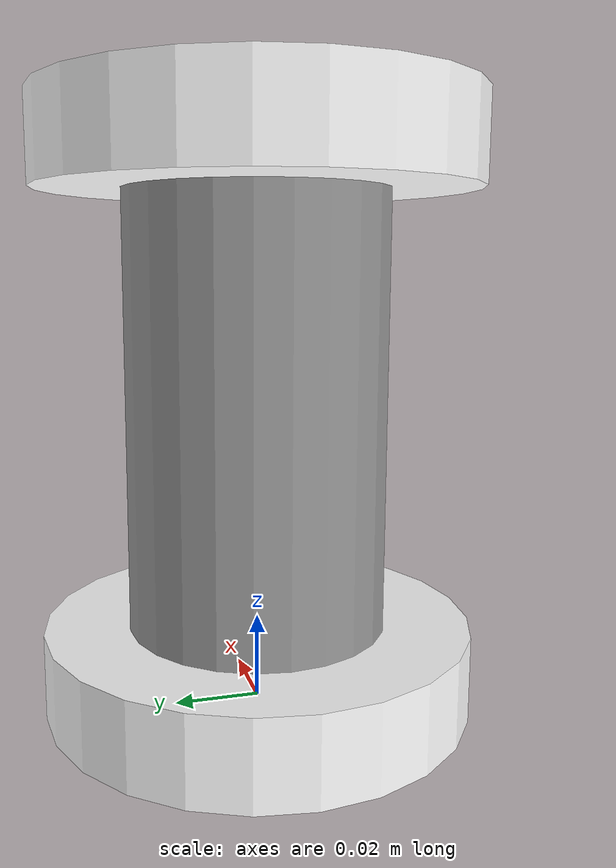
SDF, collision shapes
<?xml version='1.0'?>
<sdf version='1.6'>
  <model name='CableReel'>
    <link name='link_b'>
      <pose frame=''>0 0 0 0 -0 0</pose>
      <inertial>
        <pose frame=''>0 0 0.02895 0 -0 0</pose>
        <mass>0.5</mass>
        <inertia>
          <ixx>0.00321218</ixx>
          <ixy>0</ixy>
          <ixz>0</ixz>
          <iyy>0.00321218</iyy>
          <iyz>0</iyz>
          <izz>0.00614499</izz>
        </inertia>
      </inertial>
      <self_collide>0</self_collide>
      <kinematic>0</kinematic>
      <gravity>1</gravity>
      <visual name='visual'>
        <geometry>
          <mesh>
            <uri>model://disk_part/meshes/disk.dae</uri>
            <scale>0.3 0.3 0.3</scale>
          </mesh>
        </geometry>
        <material>
          <script>
            <uri>model://arm_part/materials/scripts</uri>
            <uri>model://arm_part/materials/textures</uri>
            <name>ArmPart/Diffuse</name>
          </script>
          <shader type='pixel'>
            <normal_map>__default__</normal_map>
          </shader>
          <ambient>1 1 1 1</ambient>
          <diffuse>1 1 1 1</diffuse>
          <specular>0 0 0 1</specular>
          <emissive>0 0 0 1</emissive>
        </material>
        <pose frame=''>0 0 0 0 -0 0</pose>
        <transparency>0</transparency>
        <cast_shadows>1</cast_shadows>
      </visual>
      <collision name='collision'>
        <laser_retro>0</laser_retro>
        <max_contacts>10</max_contacts>
        <pose frame=''>0 0 0.01 0 -0 0</pose>
        <geometry>
          <cylinder>
            <radius>0.05</radius>
            <length>0.02</length>
          </cylinder>
        </geometry>
        <surface>
          <friction>
            <ode>
              <mu>1</mu>
              <mu2>1</mu2>
              <fdir1>0 0 0</fdir1>
              <slip1>0</slip1>
              <slip2>0</slip2>
            </ode>
            <torsional>
              <coefficient>1</coefficient>
              <patch_radius>0</patch_radius>
              <surface_radius>0</surface_radius>
              <use_patch_radius>1</use_patch_radius>
              <ode>
                <slip>0</slip>
              </ode>
            </torsional>
          </friction>
          <bounce>
            <restitution_coefficient>0</restitution_coefficient>
            <threshold>1e+06</threshold>
          </bounce>
          <contact>
            <collide_without_contact>0</collide_without_contact>
            <collide_without_contact_bitmask>1</collide_without_contact_bitmask>
            <collide_bitmask>1</collide_bitmask>
            <ode>
              <soft_cfm>0</soft_cfm>
              <soft_erp>0.2</soft_erp>
              <kp>1e+13</kp>
              <kd>1</kd>
              <max_vel>0.01</max_vel>
              <min_depth>0</min_depth>
            </ode>
            <bullet>
              <split_impulse>1</split_impulse>
              <split_impulse_penetration_threshold>-0.01</split_impulse_penetration_threshold>
              <soft_cfm>0</soft_cfm>
              <soft_erp>0.2</soft_erp>
              <kp>1e+13</kp>
              <kd>1</kd>
            </bullet>
          </contact>
        </surface>
      </collision>
    </link>
    <link name='link'>
      <pose frame=''>-0.00141 0.000536 0.074804 2.3e-05 2.3e-05 0</pose>
      <inertial>
        <mass>1</mass>
        <inertia>
          <ixx>0.145833</ixx>
          <ixy>0</ixy>
          <ixz>0</ixz>
          <iyy>0.145833</iyy>
          <iyz>0</iyz>
          <izz>0.125</izz>
        </inertia>
        <pose frame=''>0 0 0 0 -0 0</pose>
      </inertial>
      <gravity>1</gravity>
      <self_collide>0</self_collide>
      <kinematic>0</kinematic>
      <visual name='visual'>
        <pose frame=''>0 0 0 0 -0 0</pose>
        <geometry>
          <cylinder>
            <radius>0.03</radius>
            <length>0.12</length>
          </cylinder>
        </geometry>
        <material>
          <lighting>1</lighting>
          <script>
            <uri>file://media/materials/scripts/gazebo.material</uri>
            <name>Gazebo/Grey</name>
          </script>
          <shader type='pixel'>
            <normal_map>__default__</normal_map>
          </shader>
          <ambient>0.3 0.3 0.3 1</ambient>
          <diffuse>0.7 0.7 0.7 1</diffuse>
          <specular>0.01 0.01 0.01 1</specular>
          <emissive>0 0 0 1</emissive>
        </material>
        <transparency>0</transparency>
        <cast_shadows>1</cast_shadows>
      </visual>
      <collision name='collision'>
        <laser_retro>0</laser_retro>
        <max_contacts>10</max_contacts>
        <pose frame=''>0 0 0 0 -0 0</pose>
        <geometry>
          <cylinder>
            <radius>0.03</radius>
            <length>0.12</length>
          </cylinder>
        </geometry>
        <surface>
          <friction>
            <ode>
              <mu>1</mu>
              <mu2>1</mu2>
              <fdir1>0 0 0</fdir1>
              <slip1>0</slip1>
              <slip2>0</slip2>
            </ode>
            <torsional>
              <coefficient>1</coefficient>
              <patch_radius>0</patch_radius>
              <surface_radius>0</surface_radius>
              <use_patch_radius>1</use_patch_radius>
              <ode>
                <slip>0</slip>
              </ode>
            </torsional>
          </friction>
          <bounce>
            <restitution_coefficient>0</restitution_coefficient>
            <threshold>1e+06</threshold>
          </bounce>
          <contact>
            <collide_without_contact>0</collide_without_contact>
            <collide_without_contact_bitmask>1</collide_without_contact_bitmask>
            <collide_bitmask>1</collide_bitmask>
            <ode>
              <soft_cfm>0</soft_cfm>
              <soft_erp>0.2</soft_erp>
              <kp>1e+13</kp>
              <kd>1</kd>
              <max_vel>0.01</max_vel>
              <min_depth>0</min_depth>
            </ode>
            <bullet>
              <split_impulse>1</split_impulse>
              <split_impulse_penetration_threshold>-0.01</split_impulse_penetration_threshold>
              <soft_cfm>0</soft_cfm>
              <soft_erp>0.2</soft_erp>
              <kp>1e+13</kp>
              <kd>1</kd>
            </bullet>
          </contact>
        </surface>
      </collision>
    </link>
    <link name='link_clone'>
      <pose frame=''>-0 -0 0.119799 0 -0 0</pose>
      <inertial>
        <pose frame=''>0 0 0.02895 0 -0 0</pose>
        <mass>0.5</mass>
        <inertia>
          <ixx>0.00321218</ixx>
          <ixy>0</ixy>
          <ixz>0</ixz>
          <iyy>0.00321218</iyy>
          <iyz>0</iyz>
          <izz>0.00614499</izz>
        </inertia>
      </inertial>
      <self_collide>0</self_collide>
      <kinematic>0</kinematic>
      <gravity>1</gravity>
      <visual name='visual'>
        <geometry>
          <mesh>
            <uri>model://disk_part/meshes/disk.dae</uri>
            <scale>0.3 0.3 0.3</scale>
          </mesh>
        </geometry>
        <material>
          <script>
            <uri>model://arm_part/materials/scripts</uri>
            <uri>model://arm_part/materials/textures</uri>
            <name>ArmPart/Diffuse</name>
          </script>
          <shader type='pixel'>
            <normal_map>__default__</normal_map>
          </shader>
          <ambient>1 1 1 1</ambient>
          <diffuse>1 1 1 1</diffuse>
          <specular>0 0 0 1</specular>
          <emissive>0 0 0 1</emissive>
        </material>
        <pose frame=''>0 0 0 0 -0 0</pose>
        <transparency>0</transparency>
        <cast_shadows>1</cast_shadows>
      </visual>
      <collision name='collision'>
        <laser_retro>0</laser_retro>
        <max_contacts>10</max_contacts>
        <pose frame=''>0 0 0.01 0 -0 0</pose>
        <geometry>
          <cylinder>
            <radius>0.05</radius>
            <length>0.02</length>
          </cylinder>
        </geometry>
        <surface>
          <friction>
            <ode>
              <mu>1</mu>
              <mu2>1</mu2>
              <fdir1>0 0 0</fdir1>
              <slip1>0</slip1>
              <slip2>0</slip2>
            </ode>
            <torsional>
              <coefficient>1</coefficient>
              <patch_radius>0</patch_radius>
              <surface_radius>0</surface_radius>
              <use_patch_radius>1</use_patch_radius>
              <ode>
                <slip>0</slip>
              </ode>
            </torsional>
          </friction>
          <bounce>
            <restitution_coefficient>0</restitution_coefficient>
            <threshold>1e+06</threshold>
          </bounce>
          <contact>
            <collide_without_contact>0</collide_without_contact>
            <collide_without_contact_bitmask>1</collide_without_contact_bitmask>
            <collide_bitmask>1</collide_bitmask>
            <ode>
              <soft_cfm>0</soft_cfm>
              <soft_erp>0.2</soft_erp>
              <kp>1e+13</kp>
              <kd>1</kd>
              <max_vel>0.01</max_vel>
              <min_depth>0</min_depth>
            </ode>
            <bullet>
              <split_impulse>1</split_impulse>
              <split_impulse_penetration_threshold>-0.01</split_impulse_penetration_threshold>
              <soft_cfm>0</soft_cfm>
              <soft_erp>0.2</soft_erp>
              <kp>1e+13</kp>
              <kd>1</kd>
            </bullet>
          </contact>
        </surface>
      </collision>
    </link>
    <joint name='link_JOINT_0' type='fixed'>
      <parent>link</parent>
      <child>link_b</child>
      <pose frame=''>0 0 0 0 -0 0</pose>
      <physics>
        <ode>
          <limit>
            <cfm>0</cfm>
            <erp>0.2</erp>
          </limit>
          <suspension>
            <cfm>0</cfm>
            <erp>0.2</erp>
          </suspension>
        </ode>
      </physics>
    </joint>
    <joint name='link_0_JOINT_1' type='fixed'>
      <parent>link</parent>
      <child>link_clone</child>
      <pose frame=''>0 0 0 0 -0 0</pose>
      <physics>
        <ode>
          <limit>
            <cfm>0</cfm>
            <erp>0.2</erp>
          </limit>
          <suspension>
            <cfm>0</cfm>
            <erp>0.2</erp>
          </suspension>
        </ode>
      </physics>
    </joint>
    <static>0</static>
    <allow_auto_disable>1</allow_auto_disable>
  </model>
</sdf>
